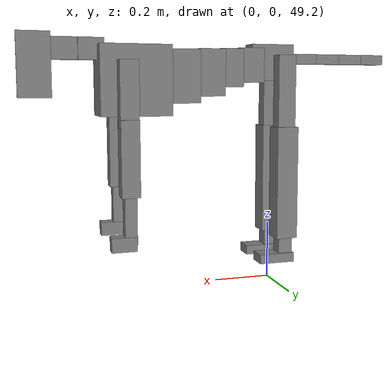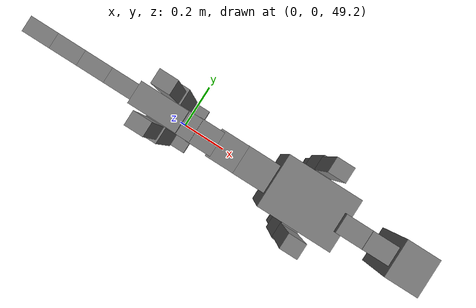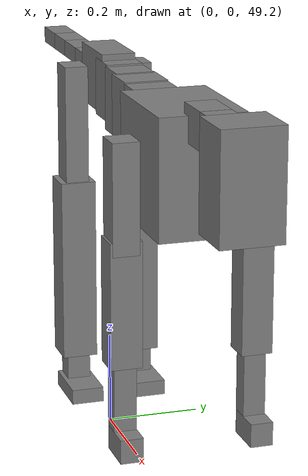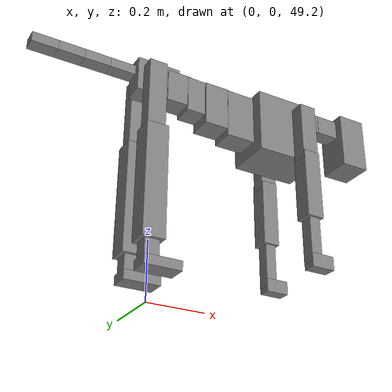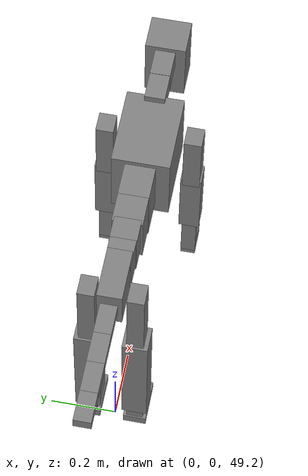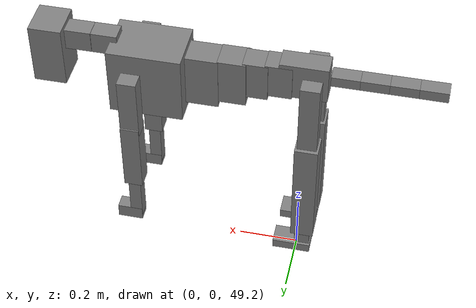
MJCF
<mujoco model="dog">

    <default>
        <joint armature="0.02" stiffness="1" damping="0.2" limited="true"/>
        <geom condim="3" friction="1 0.05 0.05" margin="0.01"/>
        <motor ctrllimited="true" ctrlrange="-1.0 1.0" forcelimited="true" gear="50"/>
    </default>

    <compiler inertiafromgeom="true" angle="radian"/>

    <option timestep="0.016" iterations="50" tolerance="1e-10" solver="Newton" jacobian="dense" cone="pyramidal"/>

    <size nconmax="20000" njmax="60000" nstack="5000000"/>
    <visual>
        <map force="0.1" zfar="30"/>
        <rgba haze="0.15 0.25 0.35 1"/>
        <quality shadowsize="2048"/>
        <global offwidth="800" offheight="800"/>
    </visual>

    <asset>
        <texture type="skybox" builtin="gradient" rgb1="0.3 0.5 0.7" rgb2="0 0 0" width="512" height="512"/>
        <texture name="texplane" type="2d" builtin="checker" rgb1=".2 .3 .4" rgb2=".1 0.15 0.2" width="512" height="512"
                 mark="cross" markrgb=".8 .8 .8"/>
        <texture name="texgeom" type="cube" builtin="flat" mark="cross" width="127" height="1278" rgb1="0.8 0.6 0.4"
                 rgb2="0.8 0.6 0.4" markrgb="1 1 1" random="0.01"/>

        <material name="matplane" reflectance="0.3" texture="texplane" texrepeat="1 1" texuniform="true"/>
        <material name="matgeom" texture="texgeom" texuniform="true" rgba="0.8 0.6 .4 1"/>
    </asset>

    <worldbody>
        <geom name="floor" pos="0 0 0" size="0 0 .25" type="plane" material="matplane" condim="3"/>

        <light directional="false" diffuse=".2 .2 .2" specular="0 0 0" pos="0 0 5" dir="0 0 -1" castshadow="false"/>
        <light mode="targetbodycom" target="torso" directional="false" diffuse=".8 .8 .8" specular="0.3 0.3 0.3"
               pos="0 0 4.0" dir="0 0 -1"/>

        <body name="root" pos="0 0 50">
            <freejoint name="root_1"/>
            <geom type="box" pos="0 0 -0.02" size="0.0774  0.0358  0.063" density="2030"/>

            <body name="spine1" pos="0.054 0 0">
                <joint name="spine1_y" axis="0 1 0" range="0 0.7" limited="true"/>
                <geom type="box" pos="0.02375 0 -0.03" size="0.04375  0.0375  0.05985" density="2030"/>

                <body name="spine2" pos="0.0612 0 0">
                    <joint name="spine2_y" axis="0 1 0" range="-0.15 0.15" limited="true"/>
                    <geom type="box" pos="0.03555  0  -0.04" size="0.04055  0.039  0.06615" density="2030"/>

                    <body name="spine3" pos="0.0730 0 0">
                        <joint name="spine3_y" axis="0 1 0" range="-0.15 0.15" limited="true"/>
                        <geom type="box" pos="0.03555  0  -0.057" size="0.04555  0.0445  0.081" density="2030"/>

                        <body name="spine4" pos="0.0780 0 0">
                            <joint name="spine4_y" axis="0 1 0" range="-0.15 0.15" limited="true"/>
                            <geom type="box" pos="0.05265  0  -0.07" size="0.05265  0.045  0.09135" density="2030"/>

                            <body name="torso" pos="0.1082 0 0">
                                <joint name="torso_y" axis="0 1 0" range="-0.15 0.15" limited="true"/>
                                <geom type="box" pos="0.11925  0  -0.085" size="0.11925  0.085  0.11745"
                                      density="2030"/>

                                <body name="neck1" pos="0.2160  0   0.0180">
                                    <joint name="neck1_y" axis="0 1 0" range="-1.2  -1" limited="true"/>
                                    <geom type="box" pos="0.0423  0  0" size="0.0423  0.03  0.036" density="2325"/>

                                    <body name="neck2" pos="0.0853  0  0">
                                        <joint name="neck2_y" axis="0 1 0" range="0.1  0" limited="true"/>
                                        <geom type="box" pos="0.0423  0  0" size="0.0423  0.03  0.036" density="2325"/>

                                        <body name="head" pos="0.0853  0  0">
                                            <joint name="head_y" axis="0 1 0" range="-0.3  -0.2" limited="true"/>
                                            <geom type="box" pos="0.0531  0  -0.055" size="0.0531  0.06  0.1044"
                                                  density="4030"/>

                                        </body>
                                    </body>
                                </body>

                                <body name="front_shoulder" pos="0.156  0   -0.0480">
                                    <joint name="front_shoulder_y" axis="0 1 0" range="-1 1.5" limited="true"/>
                                    <geom type="box" pos="0 0.13 -0.0812" size="0.0306  0.0262  0.1078" density="1158"/>
                                    <geom type="box" pos="0 -0.13 -0.0812" size="0.0306  0.0262  0.1078"
                                          density="1158"/>

                                    <body name="front_elbow" pos="0  0  -0.1624">
                                        <joint name="front_elbow_y" axis="0 1 0" range="-2 0" limited="true"/>
                                        <geom type="box" pos="0 0.13 -0.1240" size="0.0304  0.0311  0.1240"
                                              density="1081"/>
                                        <geom type="box" pos="0 -0.13 -0.1240" size="0.0304  0.0311  0.1240"
                                              density="1081"/>

                                        <body name="front_wrist" pos="0  0  -0.2479">
                                            <joint name="front_wrist_y" axis="0 1 0" range="-0.2 0" limited="true"/>
                                            <geom type="box" pos="0 0.13 -0.0717" size="0.0200  0.0222  0.0848"
                                                  density="1664"/>
                                            <geom type="box" pos="0 -0.13 -0.0717" size="0.0200  0.0222  0.0848"
                                                  density="1664"/>

                                            <body name="front_finger_end" pos="0  0  -0.1434">
                                                <joint name="front_finger_y" axis="0 1 0" range="-0.4 1"
                                                       limited="true"/>
                                                <geom type="box" pos="0.0226  0.13  -0.0088"
                                                      size="0.0414  0.0226  0.0238" density="1515"/>
                                                <geom type="box" pos="0.0226  -0.13  -0.0088"
                                                      size="0.0414  0.0226  0.0238" density="1515"/>

                                            </body>

                                        </body>
                                    </body>
                                </body>

                            </body>
                        </body>
                    </body>
                </body>
            </body>

            <body name="back_hip" pos="-0.03 0 -0.018">
                <joint name="back_hip_y" axis="0 1 0" range="-1.5 0.3" limited="true"/>
                <geom type="box" pos="0 0.07 -0.1212" size="0.0316  0.0248  0.1440" density="1154"/>
                <geom type="box" pos="0 -0.07 -0.1212" size="0.0316  0.0248  0.1440" density="1154"/>

                <body name="back_knee" pos="0  0  -0.2424">
                    <joint name="back_knee_y" axis="0 1 0" range="0 2.8" limited="true"/>
                    <geom type="box" pos="0 0.07 -0.1811" size="0.0381  0.0375  0.1967" density="1227"/>
                    <geom type="box" pos="0 -0.07 -0.1811" size="0.0381  0.0375  0.1967" density="1227"/>

                    <body name="back_ankle" pos="0  0  -0.3622">
                        <joint name="back_ankle_y" axis="0 1 0" range="-2.2 0" limited="true"/>
                        <geom type="box" pos="0 0.07 -0.0425" size="0.0249  0.0249  0.0537" density="1284"/>
                        <geom type="box" pos="0 -0.07 -0.0425" size="0.0249  0.0249  0.0537" density="1284"/>

                        <body name="back_toe_end" pos="0  0  -0.0849">
                            <joint name="back_toe_y" axis="0 1 0" range="-0.4 1" limited="true"/>
                            <geom type="box" pos="0.0345  0.07  -0.0011" size="0.0632  0.0345  0.0161" density="1515"/>
                            <geom type="box" pos="0.0345  -0.07  -0.0011" size="0.0632  0.0345  0.0161" density="1515"/>

                        </body>
                    </body>
                </body>
            </body>

            <body name="tail1" pos="-0.074 0 -0.006">
                <joint name="tail1_y" axis="0 1 0" range="-0.2 0.2" limited="true"/>
                <geom type="box" pos="-0.0536  0  0" size="0.045  0.025  0.0175" density="1587"/>

                <body name="tail2" pos="-0.09 0 0">
                    <joint name="tail2_y" axis="0 1 0" range="-0.2 0.2" limited="true"/>
                    <geom type="box" pos="-0.0536  0  0" size="0.045  0.025  0.0175" density="1587"/>

                    <body name="tail3" pos="-0.09 0 0">
                        <joint name="tail3_y" axis="0 1 0" range="-0.2 0.2" limited="true"/>
                        <geom type="box" pos="-0.0536  0  0" size="0.045  0.025  0.0175" density="1587"/>

                        <body name="tail4" pos="-0.09 0 0">
                            <joint name="tail4_y" axis="0 1 0" range="-0.2 0.2" limited="true"/>
                            <geom type="box" pos="-0.0536  0  0" size="0.045  0.025  0.0175" density="1587"/>

                        </body>
                    </body>
                </body>
            </body>
        </body>
    </worldbody>

    <actuator>
        <motor joint="spine1_y" forcerange="-150 150     "/>
        <motor joint="spine2_y" forcerange="-150 150     "/>
        <motor joint="spine3_y" forcerange="-150 150     "/>
        <motor joint="spine4_y" forcerange="-150 150     "/>
        <motor joint="torso_y" forcerange="-150 150     "/>
        <motor joint="neck1_y" forcerange="-100 100       "/>
        <motor joint="neck2_y" forcerange="-100 100       "/>
        <motor joint="head_y" forcerange="-150 150       "/>
        <motor joint="front_shoulder_y" forcerange="-105.28 169.15"/>
        <motor joint="front_elbow_y" forcerange="-198.16 127.75"/>
        <motor joint="front_wrist_y" forcerange="-83.09 94.57"/>
        <motor joint="front_finger_y" forcerange="-37.96 42.58"/>
        <motor joint="back_hip_y" forcerange="-265.97 264.89"/>
        <motor joint="back_knee_y" forcerange="-386.82 358.81"/>
        <motor joint="back_angle_y" forcerange="-75.07 223.87"/>
        <motor joint="back_toe_y" forcerange="-93.24 102.68"/>
        <motor joint="tail1_y" forcerange="-50 50     "/>
        <motor joint="tail2_y" forcerange="-50 50     "/>
        <motor joint="tail3_y" forcerange="-50 50     "/>
        <motor joint="tail4_y" forcerange="-50 50     "/>
    </actuator>
</mujoco>
